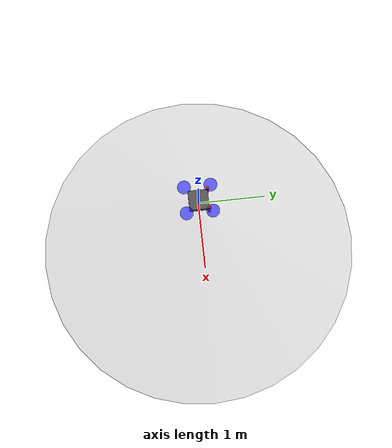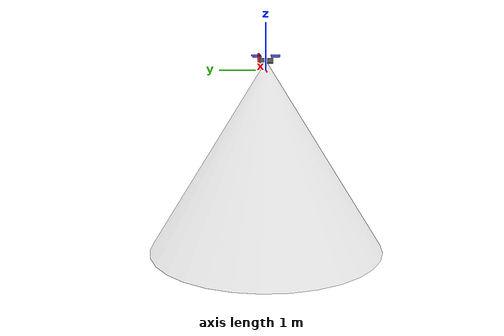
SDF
<?xml version="1.0"?>
<sdf version="1.6">
  <model name="quadcopter">
    <pose>0 0 0.2 0 0 0</pose>

    <link name="base_link">
      <gravity>0</gravity>
      <inertial>
        <mass>1.5</mass>
        <inertia>
          <ixx>5.0</ixx> <!-- Increased to prevent tilting -->
          <ixy>0</ixy>
          <ixz>0</ixz>
          <iyy>5.0</iyy> <!-- Increased to prevent tilting -->
          <iyz>0</iyz>
          <izz>0.055</izz>
        </inertia>
      </inertial>

      <!-- Body -->
      <collision name="collision_body">
        <geometry>
          <box>
            <size>0.3 0.3 0.1</size>
          </box>
        </geometry>
      </collision>

      <visual name="visual_body">
        <geometry>
          <box>
            <size>0.3 0.3 0.1</size>
          </box>
        </geometry>
        <material>
          <ambient>0.2 0.2 0.2 1</ambient>
          <diffuse>0.3 0.3 0.3 1</diffuse>
          <specular>0.5 0.5 0.5 1</specular>
        </material>
      </visual>

      <!-- Arms visualization -->
      <visual name="visual_arm1">
        <pose>0.15 0.15 0 0 0 0.785</pose>
        <geometry>
          <cylinder>
            <radius>0.02</radius>
            <length>0.3</length>
          </cylinder>
        </geometry>
        <material>
          <ambient>0.8 0.1 0.1 1</ambient>
          <diffuse>0.9 0.1 0.1 1</diffuse>
        </material>
      </visual>

      <visual name="visual_arm2">
        <pose>-0.15 0.15 0 0 0 -0.785</pose>
        <geometry>
          <cylinder>
            <radius>0.02</radius>
            <length>0.3</length>
          </cylinder>
        </geometry>
        <material>
          <ambient>0.8 0.1 0.1 1</ambient>
          <diffuse>0.9 0.1 0.1 1</diffuse>
        </material>
      </visual>

      <!-- Propellers -->
      <visual name="visual_prop1">
        <pose>0.2 0.2 0.1 0 0 0</pose>
        <geometry>
          <cylinder>
            <radius>0.1</radius>
            <length>0.02</length>
          </cylinder>
        </geometry>
        <material>
          <ambient>0.1 0.1 0.8 0.7</ambient>
          <diffuse>0.1 0.1 0.9 0.7</diffuse>
        </material>
      </visual>

      <visual name="visual_prop2">
        <pose>-0.2 0.2 0.1 0 0 0</pose>
        <geometry>
          <cylinder>
            <radius>0.1</radius>
            <length>0.02</length>
          </cylinder>
        </geometry>
        <material>
          <ambient>0.1 0.1 0.8 0.7</ambient>
          <diffuse>0.1 0.1 0.9 0.7</diffuse>
        </material>
      </visual>

      <visual name="visual_prop3">
        <pose>0.2 -0.2 0.1 0 0 0</pose>
        <geometry>
          <cylinder>
            <radius>0.1</radius>
            <length>0.02</length>
          </cylinder>
        </geometry>
        <material>
          <ambient>0.1 0.1 0.8 0.7</ambient>
          <diffuse>0.1 0.1 0.9 0.7</diffuse>
        </material>
      </visual>

      <visual name="visual_prop4">
        <pose>-0.2 -0.2 0.1 0 0 0</pose>
        <geometry>
          <cylinder>
            <radius>0.1</radius>
            <length>0.02</length>
          </cylinder>
        </geometry>
        <material>
          <ambient>0.1 0.1 0.8 0.7</ambient>
          <diffuse>0.1 0.1 0.9 0.7</diffuse>
        </material>
      </visual>

      <!-- FIELD OF VIEW VISUALIZATION (Cone/Beam) -->
      <visual name="visual_fov">
        <cast_shadows>false</cast_shadows>
        <pose>0 0 0 0 0 0</pose> <!-- Tip at drone center, pointing down (default mesh is -Z) -->
        <geometry>
          <mesh>
            <uri>model://quadcopter/cone.obj</uri>
            <scale>2.5 2.5 4.0</scale> <!-- Radius 2.5m, Depth 4.0m -->
          </mesh>
        </geometry>
        <material>
          <ambient>0.5 0.5 0.5 0.2</ambient>
          <diffuse>0.5 0.5 0.5 0.2</diffuse> <!-- Grey Transparent -->
          <specular>0.1 0.1 0.1 0.1</specular>
          <emissive>0.0 0.0 0.0 0.0</emissive>
        </material>
      </visual>

    </link>

    <!-- Planar move plugin for simplified drone control -->
    <plugin name="object_controller" filename="libgazebo_ros_planar_move.so">
      <commandTopic>cmd_vel</commandTopic>
      <odometryTopic>odom</odometryTopic>
      <odometryFrame>odom</odometryFrame>
      <odometryRate>20.0</odometryRate>
      <robotBaseFrame>base_link</robotBaseFrame>
      <cmdTimeout>-1</cmdTimeout>
    </plugin>

  </model>
</sdf>
